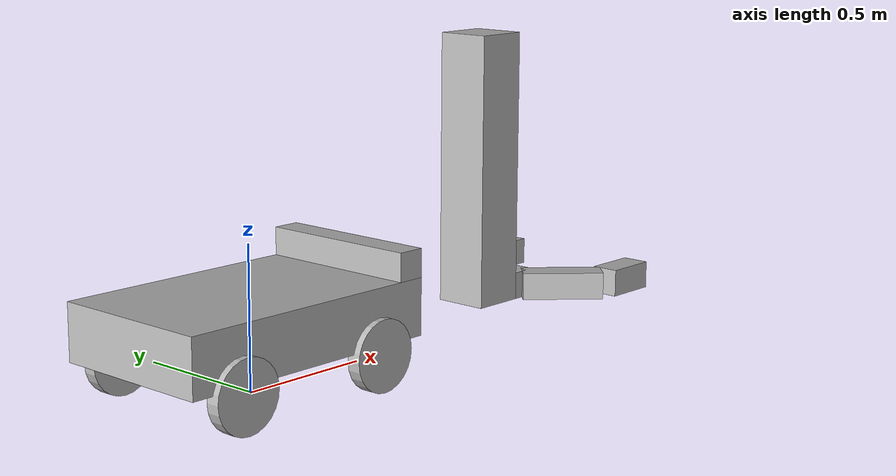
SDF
<?xml version="1.0"?>
<sdf version="1.4">
  <model name="body_lifter">
    <include>
      <uri>model://gripper</uri>
      <pose>1.3 0 0.1 0 0 0</pose>
    </include>

    <include>
      <uri>model://four_wheeled_car</uri>
      <pose>0 0 0 0 0 0</pose>
    </include>

    <joint name="arm_gripper_joint" type="revolute">
      <parent>four_wheeled_car::chassis</parent>
      <child>gripper::riser</child>
      <axis>
        <limit>
          <lower>0</lower>
          <upper>0</upper>
        </limit>
        <xyz>0 0 1</xyz>
      </axis>
    </joint>
  </model>
</sdf>

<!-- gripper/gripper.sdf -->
<sdf version="1.4">
  <model name="gripper">
    <link name="riser">
      <pose>-0.15 0.0 0.5 0 0 0</pose>
      <inertial>
        <pose>0 0 -0.5 0 0 0</pose>
        <inertia>
          <ixx>0.01</ixx>
          <ixy>0</ixy>
          <ixz>0</ixz>
          <iyy>0.01</iyy>
          <iyz>0</iyz>
          <izz>0.01</izz>
        </inertia>
        <mass>10.0</mass>
      </inertial>
      <collision name="collision">
        <geometry>
          <box>
            <size>0.2 0.2 1.0</size>
          </box>
        </geometry>
      </collision>
      <visual name="visual">
        <geometry>
          <box>
            <size>0.2 0.2 1.0</size>
          </box>
        </geometry>
        <material>
          <script>Gazebo/Purple</script>
        </material>
      </visual>
    </link>

    <link name="palm">
      <pose>0.0 0.0 0.05 0 0 0</pose>
      <inertial>
        <inertia>
          <ixx>0.01</ixx>
          <ixy>0</ixy>
          <ixz>0</ixz>
          <iyy>0.01</iyy>
          <iyz>0</iyz>
          <izz>0.01</izz>
        </inertia>
        <mass>0.5</mass>
      </inertial>
      <collision name="collision">
        <geometry>
          <box>
            <size>0.1 0.2 0.1</size>
          </box>
        </geometry>
      </collision>
      <visual name="visual">
        <geometry>
          <box>
            <size>0.1 0.2 0.1</size>
          </box>
        </geometry>
        <material>
          <script>Gazebo/Red</script>
        </material>
      </visual>
    </link>

    <link name="left_finger">
      <pose>0.1 0.2 0.05 0 0 -0.78539</pose>
      <inertial>
        <inertia>
          <ixx>0.01</ixx>
          <ixy>0</ixy>
          <ixz>0</ixz>
          <iyy>0.01</iyy>
          <iyz>0</iyz>
          <izz>0.01</izz>
        </inertia>
        <mass>0.1</mass>
      </inertial>
      <collision name="collision">
        <geometry>
          <box>
            <size>0.1 0.3 0.1</size>
          </box>
        </geometry>
      </collision>
      <visual name="visual">
        <geometry>
          <box>
            <size>0.1 0.3 0.1</size>
          </box>
        </geometry>
        <material>
          <script>Gazebo/Blue</script>
        </material>
      </visual>
    </link>

    <link name="left_finger_tip">
      <pose>0.336 0.3 0.05 0 0 1.5707</pose>
      <inertial>
        <inertia>
          <ixx>0.01</ixx>
          <ixy>0</ixy>
          <ixz>0</ixz>
          <iyy>0.01</iyy>
          <iyz>0</iyz>
          <izz>0.01</izz>
        </inertia>
        <mass>0.1</mass>
      </inertial>
      <collision name="collision">
        <geometry>
          <box>
            <size>0.1 0.2 0.1</size>
          </box>
        </geometry>
      </collision>
      <visual name="visual">
        <geometry>
          <box>
            <size>0.1 0.2 0.1</size>
          </box>
        </geometry>
        <material>
          <script>Gazebo/Blue</script>
        </material>
      </visual>
    </link>

    <link name="right_finger">
      <pose>0.1 -0.2 0.05 0 0 .78539</pose>
      <inertial>
        <inertia>
          <ixx>0.01</ixx>
          <ixy>0</ixy>
          <ixz>0</ixz>
          <iyy>0.01</iyy>
          <iyz>0</iyz>
          <izz>0.01</izz>
        </inertia>
      </inertial>
      <collision name="collision">
        <geometry>
          <box>
            <size>0.1 0.3 0.1</size>
          </box>
        </geometry>
      </collision>
      <visual name="visual">
        <geometry>
          <box>
            <size>0.1 0.3 0.1</size>
          </box>
        </geometry>
        <material>
          <script>Gazebo/Green</script>
        </material>
      </visual>
    </link>

    <link name="right_finger_tip">
      <pose>0.336 -0.3 0.05 0 0 1.5707</pose>
      <inertial>
        <inertia>
          <ixx>0.01</ixx>
          <ixy>0</ixy>
          <ixz>0</ixz>
          <iyy>0.01</iyy>
          <iyz>0</iyz>
          <izz>0.01</izz>
        </inertia>
        <mass>0.1</mass>
      </inertial>
      <collision name = "collision">
        <geometry>
          <box>
            <size>0.1 0.2 0.1</size>
          </box>
        </geometry>
      </collision>
      <visual name="visual">
        <geometry>
          <box>
            <size>0.1 0.2 0.1</size>
          </box>
        </geometry>
        <material>
          <script>Gazebo/Green</script>
        </material>
      </visual>
    </link>
    <static>false</static>

    <joint name="palm_left_finger" type="revolute">
      <pose>0 -0.15 0 0 0 0</pose>
      <child>left_finger</child>
      <parent>palm</parent>
      <axis>
        <limit>
          <lower>-0.4</lower>
          <upper>0.4</upper>
        </limit>
        <xyz>0 0 1</xyz>
      </axis>
    </joint>

    <joint name="left_finger_tip" type="revolute">
      <pose>0 0.1 0 0 0 0</pose>
      <child>left_finger_tip</child>
      <parent>left_finger</parent>
      <axis>
        <limit>
          <lower>-0.4</lower>
          <upper>0.4</upper>
        </limit>
        <xyz>0 0 1</xyz>
      </axis>
    </joint>

    <joint name="palm_right_finger" type="revolute">
      <pose>0 0.15 0 0 0 0</pose>
      <child>right_finger</child>
      <parent>palm</parent>
      <axis>
        <limit>
          <lower>-0.4</lower>
          <upper>0.4</upper>
        </limit>
        <xyz> 0 0 1 </xyz>
      </axis>
    </joint>

    <joint name="right_finger_tip" type="revolute">
      <pose>0 0.1 0 0 0 0</pose>
      <child>right_finger_tip</child>
      <parent>right_finger</parent>
      <axis>
        <limit>
          <lower>-0.4</lower>
          <upper>0.4</upper>
        </limit>
        <xyz>0 0 1</xyz>
      </axis>
    </joint>

    <joint name="palm_riser" type="prismatic">
      <child>palm</child>
      <parent>riser</parent>
      <axis>
        <limit>
          <lower>0</lower>
          <upper>0.9</upper>
        </limit>
        <xyz>0 0 1</xyz>
      </axis>
    </joint>
  </model>
</sdf>

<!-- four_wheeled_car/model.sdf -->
<sdf version='1.4'>
  <model name="four_wheeled_car">
    <static>false</static>

    <link name='chassis'>
      <pose>0 0 .25 0 0 0</pose>

      <inertial>
        <mass>20.0</mass>
        <pose>-0.1 0 -0.1 0 0 0</pose>
        <inertia>
          <ixx>0.5</ixx>
          <iyy>1.0</iyy>
          <izz>0.1</izz>
        </inertia>
      </inertial>

      <collision name='collision'>
        <geometry>
          <box>
            <size>1 0.6 0.2</size>
          </box>
        </geometry>
      </collision>

      <visual name='visual'>
        <geometry>
          <box>
            <size>1 0.6 0.2</size>
          </box>
        </geometry>
      </visual>
   </link>

    <link name="left_wheel_A">
      <pose>0.3 0.3 0.125 0 1.5707 1.5707</pose>
      <collision name="collision">
        <geometry>
          <cylinder>
            <radius>.125</radius>
            <length>.05</length>
          </cylinder>
        </geometry>
      </collision>

      <visual name="visual">
        <geometry>
          <cylinder>
            <radius>.125</radius>
            <length>.05</length>
          </cylinder>
        </geometry>
      </visual>
    </link>

    <link name="left_wheel_B">
      <pose>-0.3 0.3 0.125 0 1.5707 1.5707</pose>
      <collision name="collision">
        <geometry>
          <cylinder>
            <radius>.125</radius>
            <length>.05</length>
          </cylinder>
        </geometry>
      </collision>

      <visual name="visual">
        <geometry>
          <cylinder>
            <radius>.125</radius>
            <length>.05</length>
          </cylinder>
        </geometry>
      </visual>
    </link>

    <link name="right_wheel_A">
      <pose>0.3 -0.3 0.125 0 1.5707 1.5707</pose>
      <collision name="collision">
        <geometry>
          <cylinder>
            <radius>.125</radius>
            <length>.05</length>
          </cylinder>
        </geometry>
      </collision>
      <visual name="visual">
        <geometry>
          <cylinder>
            <radius>.125</radius>
            <length>.05</length>
          </cylinder>
        </geometry>
      </visual>
    </link>

    <link name="right_wheel_B">
      <pose>-0.3 -0.3 0.125 0 1.5707 1.5707</pose>
      <collision name="collision">
        <geometry>
          <cylinder>
            <radius>.125</radius>
            <length>.05</length>
          </cylinder>
        </geometry>
      </collision>
      <visual name="visual">
        <geometry>
          <cylinder>
            <radius>.125</radius>
            <length>.05</length>
          </cylinder>
        </geometry>
      </visual>
    </link>

    <link name="holder">
      <pose>0.45 0 0.4 0 1.5707 1.5707</pose>
      <collision name="collision">
        <geometry>
          <box>
            <size>0.1 0.1 0.6</size>
          </box>
        </geometry>
      </collision>
      <visual name="visual">
        <geometry>
          <box>
            <size>0.1 0.1 0.6</size>
          </box>
        </geometry>
      </visual>
    </link>

    <joint type="revolute" name="left_wheel_hinge_A">
      <pose>0 0 -0.03 0 0 0</pose>
      <child>left_wheel_A</child>
      <parent>chassis</parent>
      <axis>
        <xyz>0 1 0</xyz>
      </axis>
    </joint>

    <joint type="revolute" name="left_wheel_hinge_B">
      <pose>0 0 -0.03 0 0 0</pose>
      <child>left_wheel_B</child>
      <parent>chassis</parent>
      <axis>
        <xyz>0 1 0</xyz>
      </axis>
    </joint>

    <joint type="revolute" name="right_wheel_hinge_A">
      <pose>0 0 0.03 0 0 0</pose>
      <child>right_wheel_A</child>
      <parent>chassis</parent>
      <axis>
        <xyz>0 1 0</xyz>
      </axis>
    </joint>

    <joint type="revolute" name="right_wheel_hinge_B">
      <pose>0 0 0.03 0 0 0</pose>
      <child>right_wheel_B</child>
      <parent>chassis</parent>
      <axis>
        <xyz>0 1 0</xyz>
      </axis>
    </joint>

    <joint type="fixed" name="fixed_hoder_joint">
      <pose>0 0 0 0 0 0</pose>
      <child>holder</child>
      <parent>chassis</parent>
    </joint>

  </model>
</sdf>
